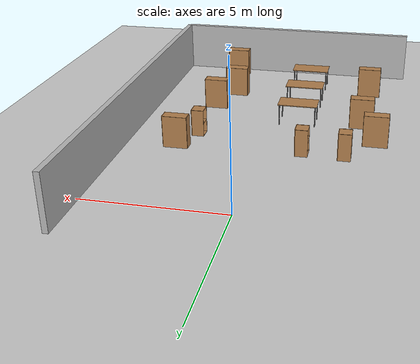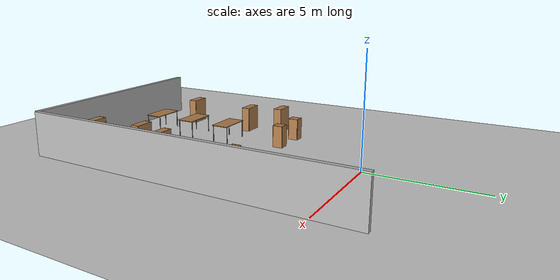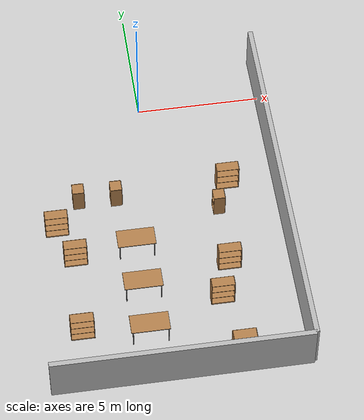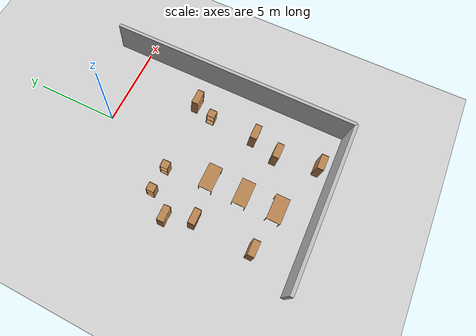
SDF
<sdf version="1.6">
 <world name="default">
  <model name="ground_plane">
   <static>1</static>
   <link name="link">
    <collision name="collision">
     <geometry><plane><normal>0 0 1</normal><size>100 100</size></plane></geometry>
     <surface><friction><ode><mu>100</mu><mu2>50</mu2></ode></friction></surface>
    </collision>
    <visual name="visual">
     <cast_shadows>0</cast_shadows>
     <geometry><plane><normal>0 0 1</normal><size>100 100</size></plane></geometry>
     <material>
      <script><uri>file://media/materials/scripts/gazebo.material</uri><name>Gazebo/Grey</name></script>
     </material>
    </visual>
    <velocity_decay><linear>0</linear><angular>0</angular></velocity_decay>
   </link>
  </model>
  <model name="wall_1_model">
   <pose>0 -13 1 0 -0 0</pose>
   <static>1</static>
   <link name="wall_1_body">
    <inertial>
     <mass>1</mass>
     <inertia><ixx>1</ixx><ixy>0</ixy><ixz>0</ixz><iyy>1</iyy><iyz>0</iyz><izz>1</izz></inertia>
    </inertial>
    <collision name="collision"><geometry><box><size>10 0.2 2</size></box></geometry></collision>
    <visual name="visual"><geometry><box><size>10 0.2 2</size></box></geometry></visual>
    <velocity_decay><linear>0</linear><angular>0</angular></velocity_decay>
   </link>
  </model>
  <model name="wall_4_model">
   <pose>5 -5.5 1 0 -0 0</pose>
   <static>1</static>
   <link name="wall_4_body">
    <inertial>
     <mass>1</mass>
     <inertia><ixx>1</ixx><ixy>0</ixy><ixz>0</ixz><iyy>1</iyy><iyz>0</iyz><izz>1</izz></inertia>
    </inertial>
    <collision name="collision"><geometry><box><size>0.2 15 2</size></box></geometry></collision>
    <visual name="visual"><geometry><box><size>0.2 15 2</size></box></geometry></visual>
    <velocity_decay><linear>0</linear><angular>0</angular></velocity_decay>
   </link>
  </model>
  <model name="cabinet_0">
   <static>0</static>
   <link name="cabinet_bottom_plate">
    <inertial>
     <pose>0 0 -1 0 -0 0</pose>
     <inertia><ixx>2.05</ixx><ixy>0</ixy><ixz>0</ixz><iyy>2.05</iyy><iyz>0</iyz><izz>2.05</izz></inertia>
     <mass>25</mass>
    </inertial>
    <collision name="cabinet_bottom_plate_geom">
     <pose>0 0 0.01 0 -0 0</pose>
     <geometry><box><size>0.45 0.45 0.02</size></box></geometry>
    </collision>
    <visual name="cabinet_bottom_plate_geom_visual">
     <pose>0 0 0.01 0 -0 0</pose>
     <geometry><box><size>0.45 0.45 0.02</size></box></geometry>
     <material>
      <script><uri>file://media/materials/scripts/gazebo.material</uri><name>Gazebo/Wood</name></script>
     </material>
    </visual>
    <collision name="cabinet_bottom_plate_geom_cabinet_back_plate">
     <pose>0.235 0 0.51 0 -0 0</pose>
     <geometry><box><size>0.02 0.45 1.02</size></box></geometry>
    </collision>
    <visual name="cabinet_bottom_plate_geom_cabinet_back_plate_visual">
     <pose>0.235 0 0.51 0 -0 0</pose>
     <geometry><box><size>0.02 0.45 1.02</size></box></geometry>
     <material>
      <script><uri>file://media/materials/scripts/gazebo.material</uri><name>Gazebo/Wood</name></script>
     </material>
    </visual>
    <collision name="cabinet_bottom_plate_geom_cabinet_left_plate">
     <pose>0 0.235 0.51 0 -0 0</pose>
     <geometry><box><size>0.45 0.02 1.02</size></box></geometry>
    </collision>
    <visual name="cabinet_bottom_plate_geom_cabinet_left_plate_visual">
     <pose>0 0.235 0.51 0 -0 0</pose>
     <geometry><box><size>0.45 0.02 1.02</size></box></geometry>
     <material>
      <script><uri>file://media/materials/scripts/gazebo.material</uri><name>Gazebo/Wood</name></script>
     </material>
    </visual>
    <collision name="cabinet_bottom_plate_geom_cabinet_middle_plate">
     <pose>0 0 0.51 0 -0 0</pose>
     <geometry><box><size>0.45 0.45 0.02</size></box></geometry>
    </collision>
    <visual name="cabinet_bottom_plate_geom_cabinet_middle_plate_visual">
     <pose>0 0 0.51 0 -0 0</pose>
     <geometry><box><size>0.45 0.45 0.02</size></box></geometry>
     <material>
      <script><uri>file://media/materials/scripts/gazebo.material</uri><name>Gazebo/Wood</name></script>
     </material>
    </visual>
    <collision name="cabinet_bottom_plate_geom_cabinet_right_plate">
     <pose>0 -0.235 0.51 0 -0 0</pose>
     <geometry><box><size>0.45 0.02 1.02</size></box></geometry>
    </collision>
    <visual name="cabinet_bottom_plate_geom_cabinet_right_plate_visual">
     <pose>0 -0.235 0.51 0 -0 0</pose>
     <geometry><box><size>0.45 0.02 1.02</size></box></geometry>
     <material>
      <script><uri>file://media/materials/scripts/gazebo.material</uri><name>Gazebo/Wood</name></script>
     </material>
    </visual>
    <collision name="cabinet_bottom_plate_geom_cabinet_top_plate">
     <pose>0 0 1.01 0 -0 0</pose>
     <geometry><box><size>0.45 0.45 0.02</size></box></geometry>
    </collision>
    <visual name="cabinet_bottom_plate_geom_cabinet_top_plate_visual">
     <pose>0 0 1.01 0 -0 0</pose>
     <geometry><box><size>0.45 0.45 0.02</size></box></geometry>
     <material>
      <script><uri>file://media/materials/scripts/gazebo.material</uri><name>Gazebo/Wood</name></script>
     </material>
    </visual>
    <velocity_decay><linear>0</linear><angular>0</angular></velocity_decay>
   </link>
   <pose>2.51573 -5.43949 0 0 -0 0</pose>
  </model>
  <model name="bookshelf">
   <static>0</static>
   <link name="link">
    <inertial>
     <mass>1</mass>
     <inertia><ixx>1</ixx><ixy>0</ixy><ixz>0</ixz><iyy>1</iyy><iyz>0</iyz><izz>1</izz></inertia>
    </inertial>
    <collision name="back">
     <pose>0 0.005 0.6 0 -0 0</pose>
     <geometry><box><size>0.9 0.01 1.2</size></box></geometry>
    </collision>
    <visual name="visual1">
     <pose>0 0.005 0.6 0 -0 0</pose>
     <geometry><box><size>0.9 0.01 1.2</size></box></geometry>
     <material>
      <script><uri>file://media/materials/scripts/gazebo.material</uri><name>Gazebo/Wood</name></script>
     </material>
    </visual>
    <collision name="left_side">
     <pose>0.45 -0.195 0.6 0 -0 0</pose>
     <geometry><box><size>0.02 0.4 1.2</size></box></geometry>
    </collision>
    <visual name="visual2">
     <pose>0.45 -0.195 0.6 0 -0 0</pose>
     <geometry><box><size>0.02 0.4 1.2</size></box></geometry>
     <material>
      <script><uri>file://media/materials/scripts/gazebo.material</uri><name>Gazebo/Wood</name></script>
     </material>
    </visual>
    <collision name="right_side">
     <pose>-0.45 -0.195 0.6 0 -0 0</pose>
     <geometry><box><size>0.02 0.4 1.2</size></box></geometry>
    </collision>
    <visual name="visual3">
     <pose>-0.45 -0.195 0.6 0 -0 0</pose>
     <geometry><box><size>0.02 0.4 1.2</size></box></geometry>
     <material>
      <script><uri>file://media/materials/scripts/gazebo.material</uri><name>Gazebo/Wood</name></script>
     </material>
    </visual>
    <collision name="bottom">
     <pose>0 -0.195 0.03 0 -0 0</pose>
     <geometry><box><size>0.88 0.4 0.06</size></box></geometry>
    </collision>
    <visual name="visual4">
     <pose>0 -0.195 0.03 0 -0 0</pose>
     <geometry><box><size>0.88 0.4 0.06</size></box></geometry>
     <material>
      <script><uri>file://media/materials/scripts/gazebo.material</uri><name>Gazebo/Wood</name></script>
     </material>
    </visual>
    <collision name="top">
     <pose>0 -0.195 1.19 0 -0 0</pose>
     <geometry><box><size>0.88 0.4 0.02</size></box></geometry>
    </collision>
    <visual name="visual5">
     <pose>0 -0.195 1.19 0 -0 0</pose>
     <geometry><box><size>0.88 0.4 0.02</size></box></geometry>
     <material>
      <script><uri>file://media/materials/scripts/gazebo.material</uri><name>Gazebo/Wood</name></script>
     </material>
    </visual>
    <collision name="low_shelf">
     <pose>0 -0.195 0.43 0 -0 0</pose>
     <geometry><box><size>0.88 0.4 0.02</size></box></geometry>
    </collision>
    <visual name="visual6">
     <pose>0 -0.195 0.43 0 -0 0</pose>
     <geometry><box><size>0.88 0.4 0.02</size></box></geometry>
     <material>
      <script><uri>file://media/materials/scripts/gazebo.material</uri><name>Gazebo/Wood</name></script>
     </material>
    </visual>
    <collision name="high_shelf">
     <pose>0 -0.195 0.8 0 -0 0</pose>
     <geometry><box><size>0.88 0.4 0.02</size></box></geometry>
    </collision>
    <visual name="visual7">
     <pose>0 -0.195 0.8 0 -0 0</pose>
     <geometry><box><size>0.88 0.4 0.02</size></box></geometry>
     <material>
      <script><uri>file://media/materials/scripts/gazebo.material</uri><name>Gazebo/Wood</name></script>
     </material>
    </visual>
    <velocity_decay><linear>0</linear><angular>0</angular></velocity_decay>
   </link>
   <pose>2 -9.55401 0 0 -0 0</pose>
  </model>
  <model name="table">
   <static>0</static>
   <link name="link">
    <collision name="surface">
     <pose>0 0 0.9 0 -0 0</pose>
     <geometry><box><size>1.5 0.8 0.03</size></box></geometry>
    </collision>
    <visual name="visual1">
     <pose>0 0 0.9 0 -0 0</pose>
     <geometry><box><size>1.5 0.8 0.03</size></box></geometry>
     <material>
      <script><uri>file://media/materials/scripts/gazebo.material</uri><name>Gazebo/Wood</name></script>
     </material>
    </visual>
    <collision name="front_left_leg">
     <pose>0.68 0.38 0.5 0 -0 0</pose>
     <geometry><cylinder><radius>0.02</radius><length>0.8</length></cylinder></geometry>
    </collision>
    <visual name="front_left_leg">
     <pose>0.68 0.38 0.5 0 -0 0</pose>
     <geometry><cylinder><radius>0.02</radius><length>0.8</length></cylinder></geometry>
     <material>
      <script><uri>file://media/materials/scripts/gazebo.material</uri><name>Gazebo/Grey</name></script>
     </material>
    </visual>
    <collision name="front_right_leg">
     <pose>0.68 -0.38 0.5 0 -0 0</pose>
     <geometry><cylinder><radius>0.02</radius><length>0.8</length></cylinder></geometry>
    </collision>
    <visual name="front_right_leg">
     <pose>0.68 -0.38 0.5 0 -0 0</pose>
     <geometry><cylinder><radius>0.02</radius><length>0.8</length></cylinder></geometry>
     <material>
      <script><uri>file://media/materials/scripts/gazebo.material</uri><name>Gazebo/Grey</name></script>
     </material>
    </visual>
    <collision name="back_right_leg">
     <pose>-0.68 -0.38 0.5 0 -0 0</pose>
     <geometry><cylinder><radius>0.02</radius><length>0.8</length></cylinder></geometry>
    </collision>
    <visual name="back_right_leg">
     <pose>-0.68 -0.38 0.5 0 -0 0</pose>
     <geometry><cylinder><radius>0.02</radius><length>0.8</length></cylinder></geometry>
     <material>
      <script><uri>file://media/materials/scripts/gazebo.material</uri><name>Gazebo/Grey</name></script>
     </material>
    </visual>
    <collision name="back_left_leg">
     <pose>-0.68 0.38 0.5 0 -0 0</pose>
     <geometry><cylinder><radius>0.02</radius><length>0.8</length></cylinder></geometry>
    </collision>
    <visual name="back_left_leg">
     <pose>-0.68 0.38 0.5 0 -0 0</pose>
     <geometry><cylinder><radius>0.02</radius><length>0.8</length></cylinder></geometry>
     <material>
      <script><uri>file://media/materials/scripts/gazebo.material</uri><name>Gazebo/Grey</name></script>
     </material>
    </visual>
    <velocity_decay><linear>0</linear><angular>0</angular></velocity_decay>
    <inertial>
     <inertia><ixx>1</ixx><ixy>0</ixy><ixz>0</ixz><iyy>1</iyy><iyz>0</iyz><izz>1</izz></inertia>
     <mass>1</mass>
    </inertial>
   </link>
   <pose>-1 -9 0 0 -0 0</pose>
  </model>
  <model name="cabinet_1">
   <static>0</static>
   <link name="cabinet_bottom_plate">
    <inertial>
     <pose>0 0 -1 0 -0 0</pose>
     <inertia><ixx>2.05</ixx><ixy>0</ixy><ixz>0</ixz><iyy>2.05</iyy><iyz>0</iyz><izz>2.05</izz></inertia>
     <mass>25</mass>
    </inertial>
    <collision name="cabinet_bottom_plate_geom">
     <pose>0 0 0.01 0 -0 0</pose>
     <geometry><box><size>0.45 0.45 0.02</size></box></geometry>
    </collision>
    <visual name="cabinet_bottom_plate_geom_visual">
     <pose>0 0 0.01 0 -0 0</pose>
     <geometry><box><size>0.45 0.45 0.02</size></box></geometry>
     <material>
      <script><uri>file://media/materials/scripts/gazebo.material</uri><name>Gazebo/Wood</name></script>
     </material>
    </visual>
    <collision name="cabinet_bottom_plate_geom_cabinet_back_plate">
     <pose>0.235 0 0.51 0 -0 0</pose>
     <geometry><box><size>0.02 0.45 1.02</size></box></geometry>
    </collision>
    <visual name="cabinet_bottom_plate_geom_cabinet_back_plate_visual">
     <pose>0.235 0 0.51 0 -0 0</pose>
     <geometry><box><size>0.02 0.45 1.02</size></box></geometry>
     <material>
      <script><uri>file://media/materials/scripts/gazebo.material</uri><name>Gazebo/Wood</name></script>
     </material>
    </visual>
    <collision name="cabinet_bottom_plate_geom_cabinet_left_plate">
     <pose>0 0.235 0.51 0 -0 0</pose>
     <geometry><box><size>0.45 0.02 1.02</size></box></geometry>
    </collision>
    <visual name="cabinet_bottom_plate_geom_cabinet_left_plate_visual">
     <pose>0 0.235 0.51 0 -0 0</pose>
     <geometry><box><size>0.45 0.02 1.02</size></box></geometry>
     <material>
      <script><uri>file://media/materials/scripts/gazebo.material</uri><name>Gazebo/Wood</name></script>
     </material>
    </visual>
    <collision name="cabinet_bottom_plate_geom_cabinet_middle_plate">
     <pose>0 0 0.51 0 -0 0</pose>
     <geometry><box><size>0.45 0.45 0.02</size></box></geometry>
    </collision>
    <visual name="cabinet_bottom_plate_geom_cabinet_middle_plate_visual">
     <pose>0 0 0.51 0 -0 0</pose>
     <geometry><box><size>0.45 0.45 0.02</size></box></geometry>
     <material>
      <script><uri>file://media/materials/scripts/gazebo.material</uri><name>Gazebo/Wood</name></script>
     </material>
    </visual>
    <collision name="cabinet_bottom_plate_geom_cabinet_right_plate">
     <pose>0 -0.235 0.51 0 -0 0</pose>
     <geometry><box><size>0.45 0.02 1.02</size></box></geometry>
    </collision>
    <visual name="cabinet_bottom_plate_geom_cabinet_right_plate_visual">
     <pose>0 -0.235 0.51 0 -0 0</pose>
     <geometry><box><size>0.45 0.02 1.02</size></box></geometry>
     <material>
      <script><uri>file://media/materials/scripts/gazebo.material</uri><name>Gazebo/Wood</name></script>
     </material>
    </visual>
    <collision name="cabinet_bottom_plate_geom_cabinet_top_plate">
     <pose>0 0 1.01 0 -0 0</pose>
     <geometry><box><size>0.45 0.45 0.02</size></box></geometry>
    </collision>
    <visual name="cabinet_bottom_plate_geom_cabinet_top_plate_visual">
     <pose>0 0 1.01 0 -0 0</pose>
     <geometry><box><size>0.45 0.45 0.02</size></box></geometry>
     <material>
      <script><uri>file://media/materials/scripts/gazebo.material</uri><name>Gazebo/Wood</name></script>
     </material>
    </visual>
    <velocity_decay><linear>0</linear><angular>0</angular></velocity_decay>
   </link>
   <pose>-3 -4.40005 0 0 -0 0</pose>
  </model>
  <model name="cabinet_2">
   <static>0</static>
   <link name="cabinet_bottom_plate">
    <inertial>
     <pose>0 0 -1 0 -0 0</pose>
     <inertia><ixx>2.05</ixx><ixy>0</ixy><ixz>0</ixz><iyy>2.05</iyy><iyz>0</iyz><izz>2.05</izz></inertia>
     <mass>25</mass>
    </inertial>
    <collision name="cabinet_bottom_plate_geom">
     <pose>0 0 0.01 0 -0 0</pose>
     <geometry><box><size>0.45 0.45 0.02</size></box></geometry>
    </collision>
    <visual name="cabinet_bottom_plate_geom_visual">
     <pose>0 0 0.01 0 -0 0</pose>
     <geometry><box><size>0.45 0.45 0.02</size></box></geometry>
     <material>
      <script><uri>file://media/materials/scripts/gazebo.material</uri><name>Gazebo/Wood</name></script>
     </material>
    </visual>
    <collision name="cabinet_bottom_plate_geom_cabinet_back_plate">
     <pose>0.235 0 0.51 0 -0 0</pose>
     <geometry><box><size>0.02 0.45 1.02</size></box></geometry>
    </collision>
    <visual name="cabinet_bottom_plate_geom_cabinet_back_plate_visual">
     <pose>0.235 0 0.51 0 -0 0</pose>
     <geometry><box><size>0.02 0.45 1.02</size></box></geometry>
     <material>
      <script><uri>file://media/materials/scripts/gazebo.material</uri><name>Gazebo/Wood</name></script>
     </material>
    </visual>
    <collision name="cabinet_bottom_plate_geom_cabinet_left_plate">
     <pose>0 0.235 0.51 0 -0 0</pose>
     <geometry><box><size>0.45 0.02 1.02</size></box></geometry>
    </collision>
    <visual name="cabinet_bottom_plate_geom_cabinet_left_plate_visual">
     <pose>0 0.235 0.51 0 -0 0</pose>
     <geometry><box><size>0.45 0.02 1.02</size></box></geometry>
     <material>
      <script><uri>file://media/materials/scripts/gazebo.material</uri><name>Gazebo/Wood</name></script>
     </material>
    </visual>
    <collision name="cabinet_bottom_plate_geom_cabinet_middle_plate">
     <pose>0 0 0.51 0 -0 0</pose>
     <geometry><box><size>0.45 0.45 0.02</size></box></geometry>
    </collision>
    <visual name="cabinet_bottom_plate_geom_cabinet_middle_plate_visual">
     <pose>0 0 0.51 0 -0 0</pose>
     <geometry><box><size>0.45 0.45 0.02</size></box></geometry>
     <material>
      <script><uri>file://media/materials/scripts/gazebo.material</uri><name>Gazebo/Wood</name></script>
     </material>
    </visual>
    <collision name="cabinet_bottom_plate_geom_cabinet_right_plate">
     <pose>0 -0.235 0.51 0 -0 0</pose>
     <geometry><box><size>0.45 0.02 1.02</size></box></geometry>
    </collision>
    <visual name="cabinet_bottom_plate_geom_cabinet_right_plate_visual">
     <pose>0 -0.235 0.51 0 -0 0</pose>
     <geometry><box><size>0.45 0.02 1.02</size></box></geometry>
     <material>
      <script><uri>file://media/materials/scripts/gazebo.material</uri><name>Gazebo/Wood</name></script>
     </material>
    </visual>
    <collision name="cabinet_bottom_plate_geom_cabinet_top_plate">
     <pose>0 0 1.01 0 -0 0</pose>
     <geometry><box><size>0.45 0.45 0.02</size></box></geometry>
    </collision>
    <visual name="cabinet_bottom_plate_geom_cabinet_top_plate_visual">
     <pose>0 0 1.01 0 -0 0</pose>
     <geometry><box><size>0.45 0.45 0.02</size></box></geometry>
     <material>
      <script><uri>file://media/materials/scripts/gazebo.material</uri><name>Gazebo/Wood</name></script>
     </material>
    </visual>
    <velocity_decay><linear>0</linear><angular>0</angular></velocity_decay>
   </link>
   <pose>-1.49183 -4.45622 0 0 -0 0</pose>
  </model>
  <model name="bookshelf_2">
   <static>0</static>
   <link name="link">
    <inertial>
     <mass>1</mass>
     <inertia><ixx>1</ixx><ixy>0</ixy><ixz>0</ixz><iyy>1</iyy><iyz>0</iyz><izz>1</izz></inertia>
    </inertial>
    <collision name="back">
     <pose>0 0.005 0.6 0 -0 0</pose>
     <geometry><box><size>0.9 0.01 1.2</size></box></geometry>
    </collision>
    <visual name="visual1">
     <pose>0 0.005 0.6 0 -0 0</pose>
     <geometry><box><size>0.9 0.01 1.2</size></box></geometry>
     <material>
      <script><uri>file://media/materials/scripts/gazebo.material</uri><name>Gazebo/Wood</name></script>
     </material>
    </visual>
    <collision name="left_side">
     <pose>0.45 -0.195 0.6 0 -0 0</pose>
     <geometry><box><size>0.02 0.4 1.2</size></box></geometry>
    </collision>
    <visual name="visual2">
     <pose>0.45 -0.195 0.6 0 -0 0</pose>
     <geometry><box><size>0.02 0.4 1.2</size></box></geometry>
     <material>
      <script><uri>file://media/materials/scripts/gazebo.material</uri><name>Gazebo/Wood</name></script>
     </material>
    </visual>
    <collision name="right_side">
     <pose>-0.45 -0.195 0.6 0 -0 0</pose>
     <geometry><box><size>0.02 0.4 1.2</size></box></geometry>
    </collision>
    <visual name="visual3">
     <pose>-0.45 -0.195 0.6 0 -0 0</pose>
     <geometry><box><size>0.02 0.4 1.2</size></box></geometry>
     <material>
      <script><uri>file://media/materials/scripts/gazebo.material</uri><name>Gazebo/Wood</name></script>
     </material>
    </visual>
    <collision name="bottom">
     <pose>0 -0.195 0.03 0 -0 0</pose>
     <geometry><box><size>0.88 0.4 0.06</size></box></geometry>
    </collision>
    <visual name="visual4">
     <pose>0 -0.195 0.03 0 -0 0</pose>
     <geometry><box><size>0.88 0.4 0.06</size></box></geometry>
     <material>
      <script><uri>file://media/materials/scripts/gazebo.material</uri><name>Gazebo/Wood</name></script>
     </material>
    </visual>
    <collision name="top">
     <pose>0 -0.195 1.19 0 -0 0</pose>
     <geometry><box><size>0.88 0.4 0.02</size></box></geometry>
    </collision>
    <visual name="visual5">
     <pose>0 -0.195 1.19 0 -0 0</pose>
     <geometry><box><size>0.88 0.4 0.02</size></box></geometry>
     <material>
      <script><uri>file://media/materials/scripts/gazebo.material</uri><name>Gazebo/Wood</name></script>
     </material>
    </visual>
    <collision name="low_shelf">
     <pose>0 -0.195 0.43 0 -0 0</pose>
     <geometry><box><size>0.88 0.4 0.02</size></box></geometry>
    </collision>
    <visual name="visual6">
     <pose>0 -0.195 0.43 0 -0 0</pose>
     <geometry><box><size>0.88 0.4 0.02</size></box></geometry>
     <material>
      <script><uri>file://media/materials/scripts/gazebo.material</uri><name>Gazebo/Wood</name></script>
     </material>
    </visual>
    <collision name="high_shelf">
     <pose>0 -0.195 0.8 0 -0 0</pose>
     <geometry><box><size>0.88 0.4 0.02</size></box></geometry>
    </collision>
    <visual name="visual7">
     <pose>0 -0.195 0.8 0 -0 0</pose>
     <geometry><box><size>0.88 0.4 0.02</size></box></geometry>
     <material>
      <script><uri>file://media/materials/scripts/gazebo.material</uri><name>Gazebo/Wood</name></script>
     </material>
    </visual>
    <velocity_decay><linear>0</linear><angular>0</angular></velocity_decay>
   </link>
   <pose>-3.41849 -7 0 0 -0 0</pose>
  </model>
  <model name="table_0">
   <static>0</static>
   <link name="link">
    <collision name="surface">
     <pose>0 0 0.9 0 -0 0</pose>
     <geometry><box><size>1.5 0.8 0.03</size></box></geometry>
    </collision>
    <visual name="visual1">
     <pose>0 0 0.9 0 -0 0</pose>
     <geometry><box><size>1.5 0.8 0.03</size></box></geometry>
     <material>
      <script><uri>file://media/materials/scripts/gazebo.material</uri><name>Gazebo/Wood</name></script>
     </material>
    </visual>
    <collision name="front_left_leg">
     <pose>0.68 0.38 0.5 0 -0 0</pose>
     <geometry><cylinder><radius>0.02</radius><length>0.8</length></cylinder></geometry>
    </collision>
    <visual name="front_left_leg">
     <pose>0.68 0.38 0.5 0 -0 0</pose>
     <geometry><cylinder><radius>0.02</radius><length>0.8</length></cylinder></geometry>
     <material>
      <script><uri>file://media/materials/scripts/gazebo.material</uri><name>Gazebo/Grey</name></script>
     </material>
    </visual>
    <collision name="front_right_leg">
     <pose>0.68 -0.38 0.5 0 -0 0</pose>
     <geometry><cylinder><radius>0.02</radius><length>0.8</length></cylinder></geometry>
    </collision>
    <visual name="front_right_leg">
     <pose>0.68 -0.38 0.5 0 -0 0</pose>
     <geometry><cylinder><radius>0.02</radius><length>0.8</length></cylinder></geometry>
     <material>
      <script><uri>file://media/materials/scripts/gazebo.material</uri><name>Gazebo/Grey</name></script>
     </material>
    </visual>
    <collision name="back_right_leg">
     <pose>-0.68 -0.38 0.5 0 -0 0</pose>
     <geometry><cylinder><radius>0.02</radius><length>0.8</length></cylinder></geometry>
    </collision>
    <visual name="back_right_leg">
     <pose>-0.68 -0.38 0.5 0 -0 0</pose>
     <geometry><cylinder><radius>0.02</radius><length>0.8</length></cylinder></geometry>
     <material>
      <script><uri>file://media/materials/scripts/gazebo.material</uri><name>Gazebo/Grey</name></script>
     </material>
    </visual>
    <collision name="back_left_leg">
     <pose>-0.68 0.38 0.5 0 -0 0</pose>
     <geometry><cylinder><radius>0.02</radius><length>0.8</length></cylinder></geometry>
    </collision>
    <visual name="back_left_leg">
     <pose>-0.68 0.38 0.5 0 -0 0</pose>
     <geometry><cylinder><radius>0.02</radius><length>0.8</length></cylinder></geometry>
     <material>
      <script><uri>file://media/materials/scripts/gazebo.material</uri><name>Gazebo/Grey</name></script>
     </material>
    </visual>
    <velocity_decay><linear>0</linear><angular>0</angular></velocity_decay>
    <inertial>
     <inertia><ixx>1</ixx><ixy>0</ixy><ixz>0</ixz><iyy>1</iyy><iyz>0</iyz><izz>1</izz></inertia>
     <mass>1</mass>
    </inertial>
   </link>
   <pose>-1 -7 0 0 -0 0</pose>
  </model>
  <model name="table_1">
   <static>0</static>
   <link name="link">
    <collision name="surface">
     <pose>0 0 0.9 0 -0 0</pose>
     <geometry><box><size>1.5 0.8 0.03</size></box></geometry>
    </collision>
    <visual name="visual1">
     <pose>0 0 0.9 0 -0 0</pose>
     <geometry><box><size>1.5 0.8 0.03</size></box></geometry>
     <material>
      <script><uri>file://media/materials/scripts/gazebo.material</uri><name>Gazebo/Wood</name></script>
     </material>
    </visual>
    <collision name="front_left_leg">
     <pose>0.68 0.38 0.5 0 -0 0</pose>
     <geometry><cylinder><radius>0.02</radius><length>0.8</length></cylinder></geometry>
    </collision>
    <visual name="front_left_leg">
     <pose>0.68 0.38 0.5 0 -0 0</pose>
     <geometry><cylinder><radius>0.02</radius><length>0.8</length></cylinder></geometry>
     <material>
      <script><uri>file://media/materials/scripts/gazebo.material</uri><name>Gazebo/Grey</name></script>
     </material>
    </visual>
    <collision name="front_right_leg">
     <pose>0.68 -0.38 0.5 0 -0 0</pose>
     <geometry><cylinder><radius>0.02</radius><length>0.8</length></cylinder></geometry>
    </collision>
    <visual name="front_right_leg">
     <pose>0.68 -0.38 0.5 0 -0 0</pose>
     <geometry><cylinder><radius>0.02</radius><length>0.8</length></cylinder></geometry>
     <material>
      <script><uri>file://media/materials/scripts/gazebo.material</uri><name>Gazebo/Grey</name></script>
     </material>
    </visual>
    <collision name="back_right_leg">
     <pose>-0.68 -0.38 0.5 0 -0 0</pose>
     <geometry><cylinder><radius>0.02</radius><length>0.8</length></cylinder></geometry>
    </collision>
    <visual name="back_right_leg">
     <pose>-0.68 -0.38 0.5 0 -0 0</pose>
     <geometry><cylinder><radius>0.02</radius><length>0.8</length></cylinder></geometry>
     <material>
      <script><uri>file://media/materials/scripts/gazebo.material</uri><name>Gazebo/Grey</name></script>
     </material>
    </visual>
    <collision name="back_left_leg">
     <pose>-0.68 0.38 0.5 0 -0 0</pose>
     <geometry><cylinder><radius>0.02</radius><length>0.8</length></cylinder></geometry>
    </collision>
    <visual name="back_left_leg">
     <pose>-0.68 0.38 0.5 0 -0 0</pose>
     <geometry><cylinder><radius>0.02</radius><length>0.8</length></cylinder></geometry>
     <material>
      <script><uri>file://media/materials/scripts/gazebo.material</uri><name>Gazebo/Grey</name></script>
     </material>
    </visual>
    <velocity_decay><linear>0</linear><angular>0</angular></velocity_decay>
    <inertial>
     <inertia><ixx>1</ixx><ixy>0</ixy><ixz>0</ixz><iyy>1</iyy><iyz>0</iyz><izz>1</izz></inertia>
     <mass>1</mass>
    </inertial>
   </link>
   <pose>-1 -11 0 0 -0 0</pose>
  </model>
  <model name="bookshelf_3">
   <static>0</static>
   <link name="link">
    <inertial>
     <mass>1</mass>
     <inertia><ixx>1</ixx><ixy>0</ixy><ixz>0</ixz><iyy>1</iyy><iyz>0</iyz><izz>1</izz></inertia>
    </inertial>
    <collision name="back">
     <pose>0 0.005 0.6 0 -0 0</pose>
     <geometry><box><size>0.9 0.01 1.2</size></box></geometry>
    </collision>
    <visual name="visual1">
     <pose>0 0.005 0.6 0 -0 0</pose>
     <geometry><box><size>0.9 0.01 1.2</size></box></geometry>
     <material>
      <script><uri>file://media/materials/scripts/gazebo.material</uri><name>Gazebo/Wood</name></script>
     </material>
    </visual>
    <collision name="left_side">
     <pose>0.45 -0.195 0.6 0 -0 0</pose>
     <geometry><box><size>0.02 0.4 1.2</size></box></geometry>
    </collision>
    <visual name="visual2">
     <pose>0.45 -0.195 0.6 0 -0 0</pose>
     <geometry><box><size>0.02 0.4 1.2</size></box></geometry>
     <material>
      <script><uri>file://media/materials/scripts/gazebo.material</uri><name>Gazebo/Wood</name></script>
     </material>
    </visual>
    <collision name="right_side">
     <pose>-0.45 -0.195 0.6 0 -0 0</pose>
     <geometry><box><size>0.02 0.4 1.2</size></box></geometry>
    </collision>
    <visual name="visual3">
     <pose>-0.45 -0.195 0.6 0 -0 0</pose>
     <geometry><box><size>0.02 0.4 1.2</size></box></geometry>
     <material>
      <script><uri>file://media/materials/scripts/gazebo.material</uri><name>Gazebo/Wood</name></script>
     </material>
    </visual>
    <collision name="bottom">
     <pose>0 -0.195 0.03 0 -0 0</pose>
     <geometry><box><size>0.88 0.4 0.06</size></box></geometry>
    </collision>
    <visual name="visual4">
     <pose>0 -0.195 0.03 0 -0 0</pose>
     <geometry><box><size>0.88 0.4 0.06</size></box></geometry>
     <material>
      <script><uri>file://media/materials/scripts/gazebo.material</uri><name>Gazebo/Wood</name></script>
     </material>
    </visual>
    <collision name="top">
     <pose>0 -0.195 1.19 0 -0 0</pose>
     <geometry><box><size>0.88 0.4 0.02</size></box></geometry>
    </collision>
    <visual name="visual5">
     <pose>0 -0.195 1.19 0 -0 0</pose>
     <geometry><box><size>0.88 0.4 0.02</size></box></geometry>
     <material>
      <script><uri>file://media/materials/scripts/gazebo.material</uri><name>Gazebo/Wood</name></script>
     </material>
    </visual>
    <collision name="low_shelf">
     <pose>0 -0.195 0.43 0 -0 0</pose>
     <geometry><box><size>0.88 0.4 0.02</size></box></geometry>
    </collision>
    <visual name="visual6">
     <pose>0 -0.195 0.43 0 -0 0</pose>
     <geometry><box><size>0.88 0.4 0.02</size></box></geometry>
     <material>
      <script><uri>file://media/materials/scripts/gazebo.material</uri><name>Gazebo/Wood</name></script>
     </material>
    </visual>
    <collision name="high_shelf">
     <pose>0 -0.195 0.8 0 -0 0</pose>
     <geometry><box><size>0.88 0.4 0.02</size></box></geometry>
    </collision>
    <visual name="visual7">
     <pose>0 -0.195 0.8 0 -0 0</pose>
     <geometry><box><size>0.88 0.4 0.02</size></box></geometry>
     <material>
      <script><uri>file://media/materials/scripts/gazebo.material</uri><name>Gazebo/Wood</name></script>
     </material>
    </visual>
    <velocity_decay><linear>0</linear><angular>0</angular></velocity_decay>
   </link>
   <pose>2.45055 -12 0 0 -0 0</pose>
  </model>
  <model name="bookshelf_4">
   <static>0</static>
   <link name="link">
    <inertial>
     <mass>1</mass>
     <inertia><ixx>1</ixx><ixy>0</ixy><ixz>0</ixz><iyy>1</iyy><iyz>0</iyz><izz>1</izz></inertia>
    </inertial>
    <collision name="back">
     <pose>0 0.005 0.6 0 -0 0</pose>
     <geometry><box><size>0.9 0.01 1.2</size></box></geometry>
    </collision>
    <visual name="visual1">
     <pose>0 0.005 0.6 0 -0 0</pose>
     <geometry><box><size>0.9 0.01 1.2</size></box></geometry>
     <material>
      <script><uri>file://media/materials/scripts/gazebo.material</uri><name>Gazebo/Wood</name></script>
     </material>
    </visual>
    <collision name="left_side">
     <pose>0.45 -0.195 0.6 0 -0 0</pose>
     <geometry><box><size>0.02 0.4 1.2</size></box></geometry>
    </collision>
    <visual name="visual2">
     <pose>0.45 -0.195 0.6 0 -0 0</pose>
     <geometry><box><size>0.02 0.4 1.2</size></box></geometry>
     <material>
      <script><uri>file://media/materials/scripts/gazebo.material</uri><name>Gazebo/Wood</name></script>
     </material>
    </visual>
    <collision name="right_side">
     <pose>-0.45 -0.195 0.6 0 -0 0</pose>
     <geometry><box><size>0.02 0.4 1.2</size></box></geometry>
    </collision>
    <visual name="visual3">
     <pose>-0.45 -0.195 0.6 0 -0 0</pose>
     <geometry><box><size>0.02 0.4 1.2</size></box></geometry>
     <material>
      <script><uri>file://media/materials/scripts/gazebo.material</uri><name>Gazebo/Wood</name></script>
     </material>
    </visual>
    <collision name="bottom">
     <pose>0 -0.195 0.03 0 -0 0</pose>
     <geometry><box><size>0.88 0.4 0.06</size></box></geometry>
    </collision>
    <visual name="visual4">
     <pose>0 -0.195 0.03 0 -0 0</pose>
     <geometry><box><size>0.88 0.4 0.06</size></box></geometry>
     <material>
      <script><uri>file://media/materials/scripts/gazebo.material</uri><name>Gazebo/Wood</name></script>
     </material>
    </visual>
    <collision name="top">
     <pose>0 -0.195 1.19 0 -0 0</pose>
     <geometry><box><size>0.88 0.4 0.02</size></box></geometry>
    </collision>
    <visual name="visual5">
     <pose>0 -0.195 1.19 0 -0 0</pose>
     <geometry><box><size>0.88 0.4 0.02</size></box></geometry>
     <material>
      <script><uri>file://media/materials/scripts/gazebo.material</uri><name>Gazebo/Wood</name></script>
     </material>
    </visual>
    <collision name="low_shelf">
     <pose>0 -0.195 0.43 0 -0 0</pose>
     <geometry><box><size>0.88 0.4 0.02</size></box></geometry>
    </collision>
    <visual name="visual6">
     <pose>0 -0.195 0.43 0 -0 0</pose>
     <geometry><box><size>0.88 0.4 0.02</size></box></geometry>
     <material>
      <script><uri>file://media/materials/scripts/gazebo.material</uri><name>Gazebo/Wood</name></script>
     </material>
    </visual>
    <collision name="high_shelf">
     <pose>0 -0.195 0.8 0 -0 0</pose>
     <geometry><box><size>0.88 0.4 0.02</size></box></geometry>
    </collision>
    <visual name="visual7">
     <pose>0 -0.195 0.8 0 -0 0</pose>
     <geometry><box><size>0.88 0.4 0.02</size></box></geometry>
     <material>
      <script><uri>file://media/materials/scripts/gazebo.material</uri><name>Gazebo/Wood</name></script>
     </material>
    </visual>
    <velocity_decay><linear>0</linear><angular>0</angular></velocity_decay>
   </link>
   <pose>2.51316 -8 0 0 -0 0</pose>
  </model>
  <model name="bookshelf_5">
   <static>0</static>
   <link name="link">
    <inertial>
     <mass>1</mass>
     <inertia><ixx>1</ixx><ixy>0</ixy><ixz>0</ixz><iyy>1</iyy><iyz>0</iyz><izz>1</izz></inertia>
    </inertial>
    <collision name="back">
     <pose>0 0.005 0.6 0 -0 0</pose>
     <geometry><box><size>0.9 0.01 1.2</size></box></geometry>
    </collision>
    <visual name="visual1">
     <pose>0 0.005 0.6 0 -0 0</pose>
     <geometry><box><size>0.9 0.01 1.2</size></box></geometry>
     <material>
      <script><uri>file://media/materials/scripts/gazebo.material</uri><name>Gazebo/Wood</name></script>
     </material>
    </visual>
    <collision name="left_side">
     <pose>0.45 -0.195 0.6 0 -0 0</pose>
     <geometry><box><size>0.02 0.4 1.2</size></box></geometry>
    </collision>
    <visual name="visual2">
     <pose>0.45 -0.195 0.6 0 -0 0</pose>
     <geometry><box><size>0.02 0.4 1.2</size></box></geometry>
     <material>
      <script><uri>file://media/materials/scripts/gazebo.material</uri><name>Gazebo/Wood</name></script>
     </material>
    </visual>
    <collision name="right_side">
     <pose>-0.45 -0.195 0.6 0 -0 0</pose>
     <geometry><box><size>0.02 0.4 1.2</size></box></geometry>
    </collision>
    <visual name="visual3">
     <pose>-0.45 -0.195 0.6 0 -0 0</pose>
     <geometry><box><size>0.02 0.4 1.2</size></box></geometry>
     <material>
      <script><uri>file://media/materials/scripts/gazebo.material</uri><name>Gazebo/Wood</name></script>
     </material>
    </visual>
    <collision name="bottom">
     <pose>0 -0.195 0.03 0 -0 0</pose>
     <geometry><box><size>0.88 0.4 0.06</size></box></geometry>
    </collision>
    <visual name="visual4">
     <pose>0 -0.195 0.03 0 -0 0</pose>
     <geometry><box><size>0.88 0.4 0.06</size></box></geometry>
     <material>
      <script><uri>file://media/materials/scripts/gazebo.material</uri><name>Gazebo/Wood</name></script>
     </material>
    </visual>
    <collision name="top">
     <pose>0 -0.195 1.19 0 -0 0</pose>
     <geometry><box><size>0.88 0.4 0.02</size></box></geometry>
    </collision>
    <visual name="visual5">
     <pose>0 -0.195 1.19 0 -0 0</pose>
     <geometry><box><size>0.88 0.4 0.02</size></box></geometry>
     <material>
      <script><uri>file://media/materials/scripts/gazebo.material</uri><name>Gazebo/Wood</name></script>
     </material>
    </visual>
    <collision name="low_shelf">
     <pose>0 -0.195 0.43 0 -0 0</pose>
     <geometry><box><size>0.88 0.4 0.02</size></box></geometry>
    </collision>
    <visual name="visual6">
     <pose>0 -0.195 0.43 0 -0 0</pose>
     <geometry><box><size>0.88 0.4 0.02</size></box></geometry>
     <material>
      <script><uri>file://media/materials/scripts/gazebo.material</uri><name>Gazebo/Wood</name></script>
     </material>
    </visual>
    <collision name="high_shelf">
     <pose>0 -0.195 0.8 0 -0 0</pose>
     <geometry><box><size>0.88 0.4 0.02</size></box></geometry>
    </collision>
    <visual name="visual7">
     <pose>0 -0.195 0.8 0 -0 0</pose>
     <geometry><box><size>0.88 0.4 0.02</size></box></geometry>
     <material>
      <script><uri>file://media/materials/scripts/gazebo.material</uri><name>Gazebo/Wood</name></script>
     </material>
    </visual>
    <velocity_decay><linear>0</linear><angular>0</angular></velocity_decay>
   </link>
   <pose>-3.53929 -10.4222 0 0 -0 0</pose>
  </model>
  <model name="bookshelf_6">
   <static>0</static>
   <link name="link">
    <inertial>
     <mass>1</mass>
     <inertia><ixx>1</ixx><ixy>0</ixy><ixz>0</ixz><iyy>1</iyy><iyz>0</iyz><izz>1</izz></inertia>
    </inertial>
    <collision name="back">
     <pose>0 0.005 0.6 0 -0 0</pose>
     <geometry><box><size>0.9 0.01 1.2</size></box></geometry>
    </collision>
    <visual name="visual1">
     <pose>0 0.005 0.6 0 -0 0</pose>
     <geometry><box><size>0.9 0.01 1.2</size></box></geometry>
     <material>
      <script><uri>file://media/materials/scripts/gazebo.material</uri><name>Gazebo/Wood</name></script>
     </material>
    </visual>
    <collision name="left_side">
     <pose>0.45 -0.195 0.6 0 -0 0</pose>
     <geometry><box><size>0.02 0.4 1.2</size></box></geometry>
    </collision>
    <visual name="visual2">
     <pose>0.45 -0.195 0.6 0 -0 0</pose>
     <geometry><box><size>0.02 0.4 1.2</size></box></geometry>
     <material>
      <script><uri>file://media/materials/scripts/gazebo.material</uri><name>Gazebo/Wood</name></script>
     </material>
    </visual>
    <collision name="right_side">
     <pose>-0.45 -0.195 0.6 0 -0 0</pose>
     <geometry><box><size>0.02 0.4 1.2</size></box></geometry>
    </collision>
    <visual name="visual3">
     <pose>-0.45 -0.195 0.6 0 -0 0</pose>
     <geometry><box><size>0.02 0.4 1.2</size></box></geometry>
     <material>
      <script><uri>file://media/materials/scripts/gazebo.material</uri><name>Gazebo/Wood</name></script>
     </material>
    </visual>
    <collision name="bottom">
     <pose>0 -0.195 0.03 0 -0 0</pose>
     <geometry><box><size>0.88 0.4 0.06</size></box></geometry>
    </collision>
    <visual name="visual4">
     <pose>0 -0.195 0.03 0 -0 0</pose>
     <geometry><box><size>0.88 0.4 0.06</size></box></geometry>
     <material>
      <script><uri>file://media/materials/scripts/gazebo.material</uri><name>Gazebo/Wood</name></script>
     </material>
    </visual>
    <collision name="top">
     <pose>0 -0.195 1.19 0 -0 0</pose>
     <geometry><box><size>0.88 0.4 0.02</size></box></geometry>
    </collision>
    <visual name="visual5">
     <pose>0 -0.195 1.19 0 -0 0</pose>
     <geometry><box><size>0.88 0.4 0.02</size></box></geometry>
     <material>
      <script><uri>file://media/materials/scripts/gazebo.material</uri><name>Gazebo/Wood</name></script>
     </material>
    </visual>
    <collision name="low_shelf">
     <pose>0 -0.195 0.43 0 -0 0</pose>
     <geometry><box><size>0.88 0.4 0.02</size></box></geometry>
    </collision>
    <visual name="visual6">
     <pose>0 -0.195 0.43 0 -0 0</pose>
     <geometry><box><size>0.88 0.4 0.02</size></box></geometry>
     <material>
      <script><uri>file://media/materials/scripts/gazebo.material</uri><name>Gazebo/Wood</name></script>
     </material>
    </visual>
    <collision name="high_shelf">
     <pose>0 -0.195 0.8 0 -0 0</pose>
     <geometry><box><size>0.88 0.4 0.02</size></box></geometry>
    </collision>
    <visual name="visual7">
     <pose>0 -0.195 0.8 0 -0 0</pose>
     <geometry><box><size>0.88 0.4 0.02</size></box></geometry>
     <material>
      <script><uri>file://media/materials/scripts/gazebo.material</uri><name>Gazebo/Wood</name></script>
     </material>
    </visual>
    <velocity_decay><linear>0</linear><angular>0</angular></velocity_decay>
   </link>
   <pose>-4 -5.47465 0 0 -0 0</pose>
  </model>
  <model name="bookshelf_0_clone_13">
   <static>0</static>
   <link name="link">
    <inertial>
     <mass>1</mass>
     <inertia><ixx>1</ixx><ixy>0</ixy><ixz>0</ixz><iyy>1</iyy><iyz>0</iyz><izz>1</izz></inertia>
    </inertial>
    <collision name="back">
     <pose>0 0.005 0.6 0 -0 0</pose>
     <geometry><box><size>0.9 0.01 1.2</size></box></geometry>
    </collision>
    <visual name="visual1">
     <pose>0 0.005 0.6 0 -0 0</pose>
     <geometry><box><size>0.9 0.01 1.2</size></box></geometry>
     <material>
      <script><uri>file://media/materials/scripts/gazebo.material</uri><name>Gazebo/Wood</name></script>
     </material>
    </visual>
    <collision name="left_side">
     <pose>0.45 -0.195 0.6 0 -0 0</pose>
     <geometry><box><size>0.02 0.4 1.2</size></box></geometry>
    </collision>
    <visual name="visual2">
     <pose>0.45 -0.195 0.6 0 -0 0</pose>
     <geometry><box><size>0.02 0.4 1.2</size></box></geometry>
     <material>
      <script><uri>file://media/materials/scripts/gazebo.material</uri><name>Gazebo/Wood</name></script>
     </material>
    </visual>
    <collision name="right_side">
     <pose>-0.45 -0.195 0.6 0 -0 0</pose>
     <geometry><box><size>0.02 0.4 1.2</size></box></geometry>
    </collision>
    <visual name="visual3">
     <pose>-0.45 -0.195 0.6 0 -0 0</pose>
     <geometry><box><size>0.02 0.4 1.2</size></box></geometry>
     <material>
      <script><uri>file://media/materials/scripts/gazebo.material</uri><name>Gazebo/Wood</name></script>
     </material>
    </visual>
    <collision name="bottom">
     <pose>0 -0.195 0.03 0 -0 0</pose>
     <geometry><box><size>0.88 0.4 0.06</size></box></geometry>
    </collision>
    <visual name="visual4">
     <pose>0 -0.195 0.03 0 -0 0</pose>
     <geometry><box><size>0.88 0.4 0.06</size></box></geometry>
     <material>
      <script><uri>file://media/materials/scripts/gazebo.material</uri><name>Gazebo/Wood</name></script>
     </material>
    </visual>
    <collision name="top">
     <pose>0 -0.195 1.19 0 -0 0</pose>
     <geometry><box><size>0.88 0.4 0.02</size></box></geometry>
    </collision>
    <visual name="visual5">
     <pose>0 -0.195 1.19 0 -0 0</pose>
     <geometry><box><size>0.88 0.4 0.02</size></box></geometry>
     <material>
      <script><uri>file://media/materials/scripts/gazebo.material</uri><name>Gazebo/Wood</name></script>
     </material>
    </visual>
    <collision name="low_shelf">
     <pose>0 -0.195 0.43 0 -0 0</pose>
     <geometry><box><size>0.88 0.4 0.02</size></box></geometry>
    </collision>
    <visual name="visual6">
     <pose>0 -0.195 0.43 0 -0 0</pose>
     <geometry><box><size>0.88 0.4 0.02</size></box></geometry>
     <material>
      <script><uri>file://media/materials/scripts/gazebo.material</uri><name>Gazebo/Wood</name></script>
     </material>
    </visual>
    <collision name="high_shelf">
     <pose>0 -0.195 0.8 0 -0 0</pose>
     <geometry><box><size>0.88 0.4 0.02</size></box></geometry>
    </collision>
    <visual name="visual7">
     <pose>0 -0.195 0.8 0 -0 0</pose>
     <geometry><box><size>0.88 0.4 0.02</size></box></geometry>
     <material>
      <script><uri>file://media/materials/scripts/gazebo.material</uri><name>Gazebo/Wood</name></script>
     </material>
    </visual>
    <velocity_decay><linear>0</linear><angular>0</angular></velocity_decay>
   </link>
   <pose>3.04676 -4.07487 0 -3.2e-05 0 0</pose>
  </model>
 </world>
</sdf>
